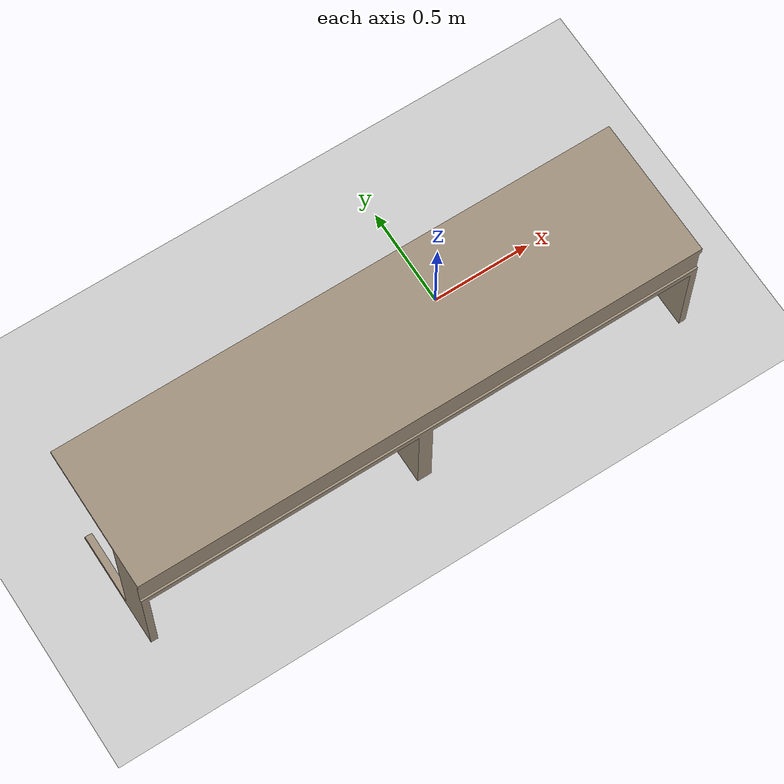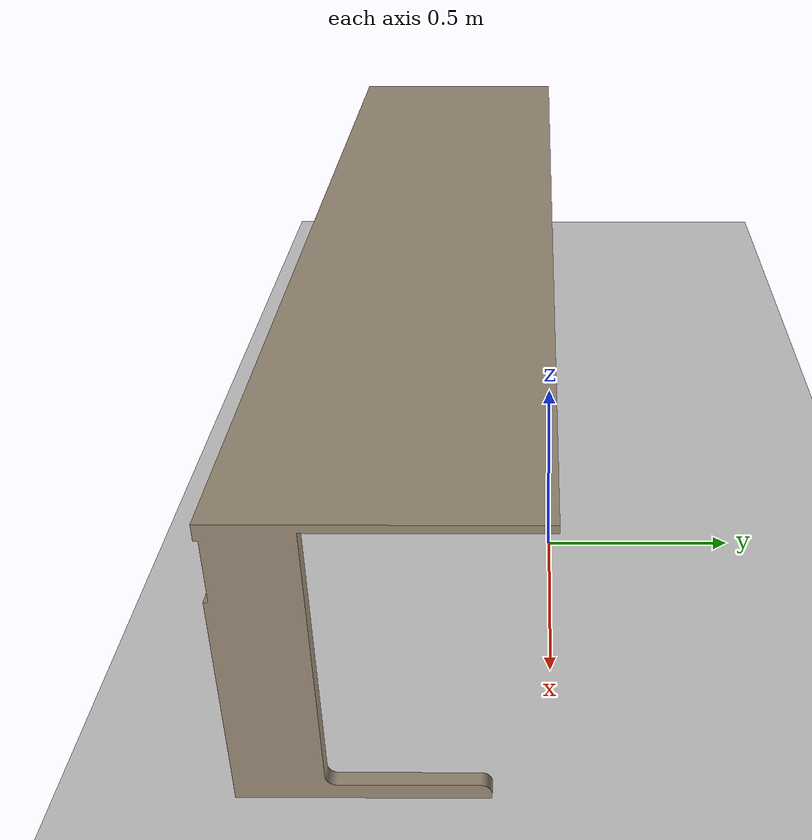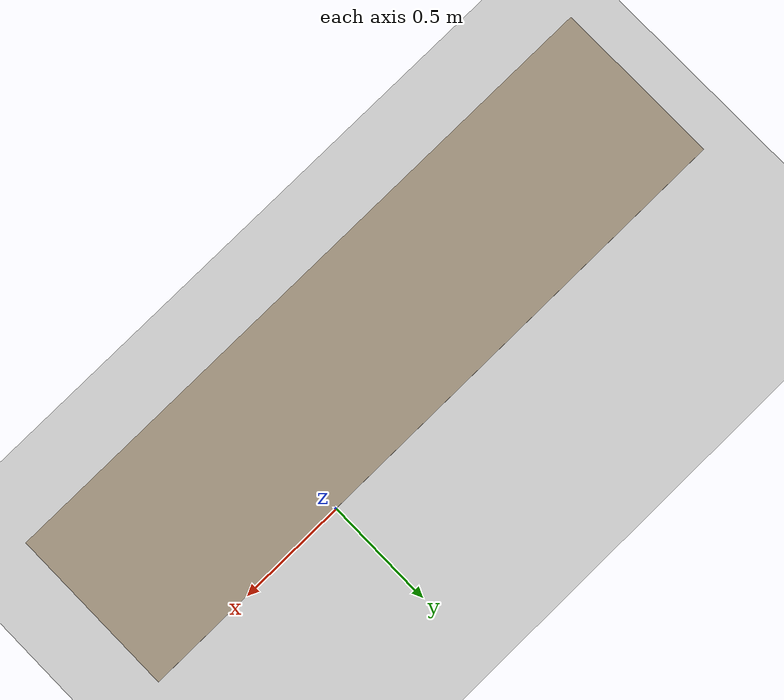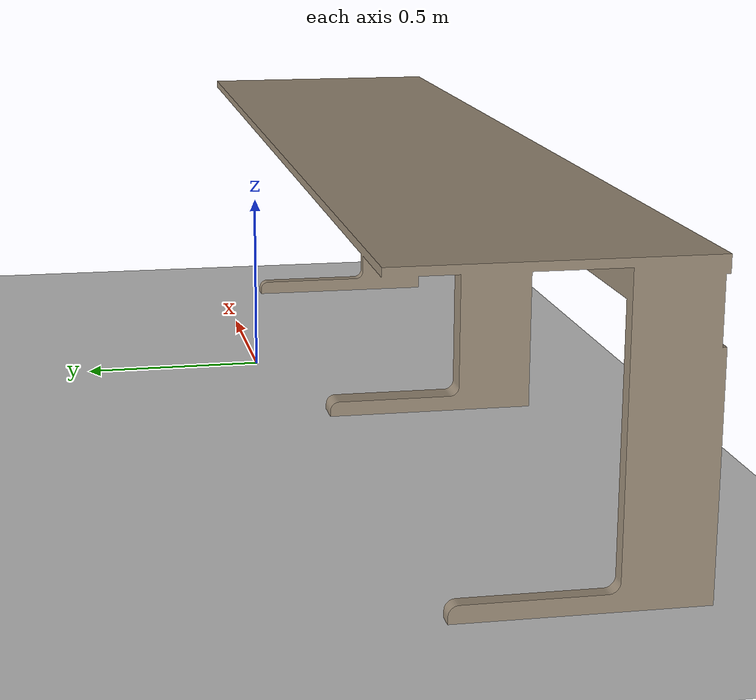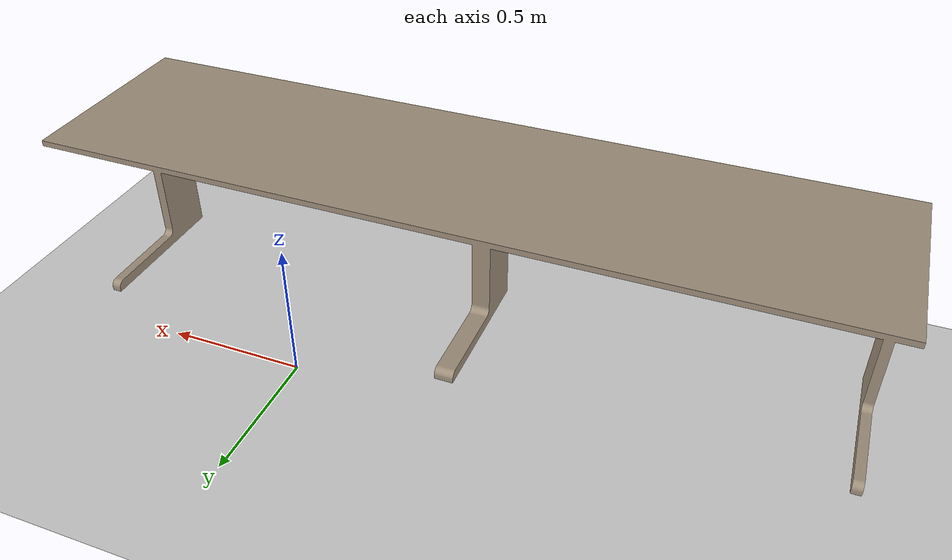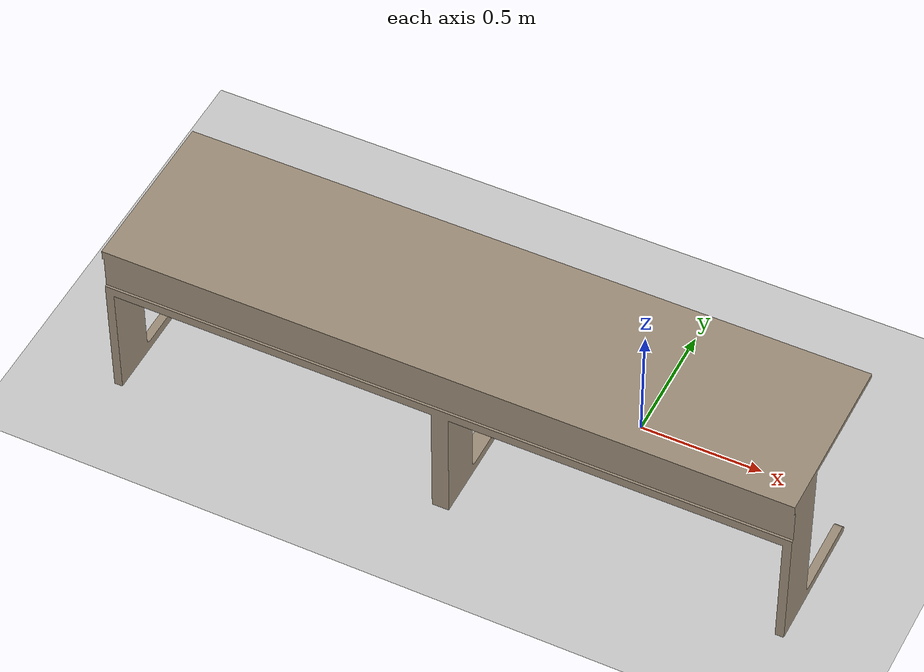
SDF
<?xml version="1.0" ?>
<sdf version="1.6">
  <world name="world">
    <scene>
      <shadows>0</shadows>
    </scene>

    <include>
      <uri>model://ground_plane</uri>
    </include>

    <include>
      <uri>model://sun</uri>
      <pose>-0.8 0 10 0 0 0</pose>
    </include>

    <include>
      <uri>model://lab_table</uri>
      <name>table</name>
      <pose>-0.51 -0.34 0 0 0 0</pose>
    </include>

  </world>
</sdf>

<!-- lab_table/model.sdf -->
<sdf version="1.9">
  <model name="lab_table">
    <static>true</static>
    <link name="lab_table_link">
      <visual name="lab_table_visual">
        <pose>-1.4 -0.35 0.72 0 0 0</pose>
        <geometry>
          <mesh>
            <uri>model://lab_table/meshes/table.stl</uri>
          </mesh>
        </geometry>
        <material>
          <ambient>0.62 0.56 0.48 1.0</ambient>
          <diffuse>0.62 0.56 0.48 1.0</diffuse>
          <specular>0.12 0.12 0.12 1.0</specular>
          <emissive>0.0 0.0 0.0 0.0</emissive>
        </material>
      </visual>
      <collision name="lab_table_collision">
        <pose>-1.4 -0.35 0.72 0 0 0</pose>
        <geometry>
          <mesh>
            <uri>model://lab_table/meshes/table.stl</uri>
          </mesh>
        </geometry>
      </collision>
    </link>
  </model>
</sdf>
